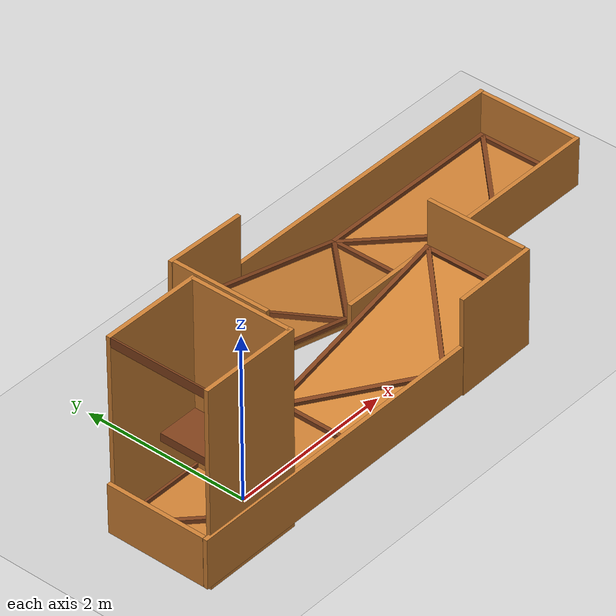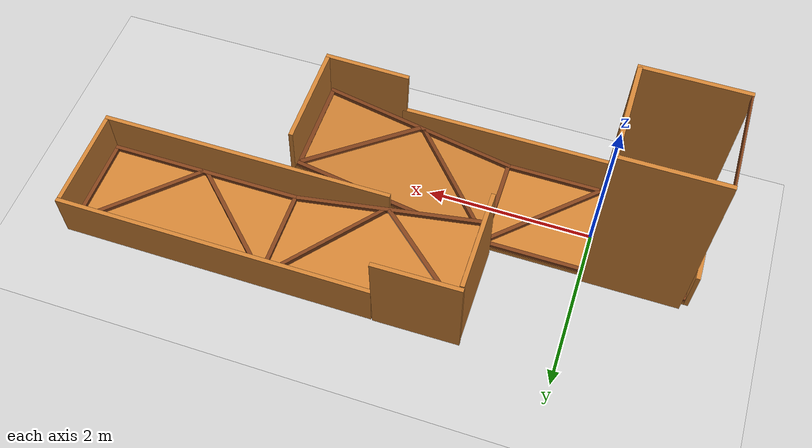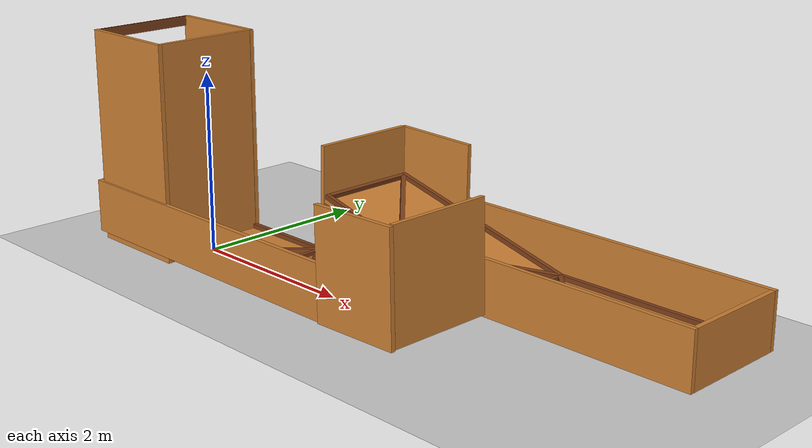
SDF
<?xml version='1.0'?>
<sdf version='1.9'>
  <world name='empty'>
    <physics name='1ms' type='ignored'>
      <max_step_size>0.001</max_step_size>
      <real_time_factor>1</real_time_factor>
      <real_time_update_rate>1000</real_time_update_rate>
    </physics>
    <plugin name='gz::sim::systems::Physics' filename='ignition-gazebo-physics-system' />
    <plugin name='gz::sim::systems::UserCommands' filename='ignition-gazebo-user-commands-system' />
    <plugin name='gz::sim::systems::SceneBroadcaster'
      filename='ignition-gazebo-scene-broadcaster-system' />
    <plugin name='gz::sim::systems::Contact' filename='ignition-gazebo-contact-system' />
    <gravity>0 0 -9.8</gravity>
    <magnetic_field>6e-06 2.3e-05 -4.2e-05</magnetic_field>
    <atmosphere type='adiabatic' />
    <scene>
      <ambient>0.4 0.4 0.4 1</ambient>
      <background>0.7 0.7 0.7 1</background>
      <shadows>true</shadows>
    </scene>
    <model name='ground_plane'>
      <static>true</static>
      <link name='link'>
        <collision name='collision'>
          <geometry>
            <plane>
              <normal>0 0 1</normal>
              <size>100 100</size>
            </plane>
          </geometry>
          <surface>
            <friction>
              <ode />
            </friction>
            <bounce />
            <contact />
          </surface>
        </collision>
        <visual name='visual'>
          <geometry>
            <plane>
              <normal>0 0 1</normal>
              <size>100 100</size>
            </plane>
          </geometry>
          <material>
            <ambient>0.8 0.8 0.8 1</ambient>
            <diffuse>0.8 0.8 0.8 1</diffuse>
            <specular>0.8 0.8 0.8 1</specular>
          </material>
        </visual>
        <pose>0 0 0 0 -0 0</pose>
        <inertial>
          <pose>0 0 0 0 -0 0</pose>
          <mass>1</mass>
          <inertia>
            <ixx>1</ixx>
            <ixy>0</ixy>
            <ixz>0</ixz>
            <iyy>1</iyy>
            <iyz>0</iyz>
            <izz>1</izz>
          </inertia>
        </inertial>
        <enable_wind>false</enable_wind>
      </link>
      <pose>0 0 0 0 -0 0</pose>
      <self_collide>false</self_collide>
    </model>

    <model name='K-Rails'>
      <pose>0 0 0 0 0 0</pose>

      <!-- Bases -->
      <link name='Bas1'>
        <inertial>
          <inertia>
            <ixx>0.16666</ixx>
            <ixy>0</ixy>
            <ixz>0</ixz>
            <iyy>0.16666</iyy>
            <iyz>0</iyz>
            <izz>0.16666</izz>
          </inertia>
          <mass>1</mass>
          <pose>0 0 0 0 -0 0</pose>
        </inertial>
        <collision name='Bas1_collision'>
          <geometry>
            <box>
              <size>2.4 1.2 0.05</size>
            </box>
          </geometry>
          <surface>
            <friction>
              <ode />
            </friction>
            <bounce />
            <contact />
          </surface>
        </collision>
        <visual name='Bas1_visual'>
          <geometry>
            <box>
              <size>2.4 1.2 0.05</size>
            </box>
          </geometry>
          <material>
            <ambient>0.8 0.5 0.2 1</ambient>
            <diffuse>0.8 0.5 0.2 1</diffuse>
            <specular>0.4 0.2 0.1 1</specular>
          </material>
        </visual>
        <pose>0 0 0.1 0 -0 0</pose>
        <enable_wind>false</enable_wind>
      </link>

      <link name='Bas2'>
        <inertial>
          <inertia>
            <ixx>0.16666</ixx>
            <ixy>0</ixy>
            <ixz>0</ixz>
            <iyy>0.16666</iyy>
            <iyz>0</iyz>
            <izz>0.16666</izz>
          </inertia>
          <mass>1</mass>
          <pose>0 0 0 0 -0 0</pose>
        </inertial>
        <collision name='Bas2_collision'>
          <geometry>
            <box>
              <size>2.4 1.2 0.05</size>
            </box>
          </geometry>
          <surface>
            <friction>
              <ode />
            </friction>
            <bounce />
            <contact />
          </surface>
        </collision>
        <visual name='Bas2_visual'>
          <geometry>
            <box>
              <size>2.4 1.2 0.05</size>
            </box>
          </geometry>
          <material>
            <ambient>0.8 0.5 0.2 1</ambient>
            <diffuse>0.8 0.5 0.2 1</diffuse>
            <specular>0.4 0.2 0.1 1</specular>
          </material>
        </visual>
        <pose relative_to='Bas1'>2.3 0 0.29 0 -0.25 0</pose>
        <enable_wind>false</enable_wind>
      </link>

      <link name='Bas3'>
        <inertial>
          <inertia>
            <ixx>0.16666</ixx>
            <ixy>0</ixy>
            <ixz>0</ixz>
            <iyy>0.16666</iyy>
            <iyz>0</iyz>
            <izz>0.16666</izz>
          </inertia>
          <mass>1</mass>
          <pose>0 0 0 0 -0 0</pose>
        </inertial>
        <collision name='Bas3_collision'>
          <geometry>
            <box>
              <size>2.4 1.2 0.05</size>
            </box>
          </geometry>
          <surface>
            <friction>
              <ode />
            </friction>
            <bounce />
            <contact />
          </surface>
        </collision>
        <visual name='Bas3_visual'>
          <geometry>
            <box>
              <size>2.4 1.2 0.05</size>
            </box>
          </geometry>
          <material>
            <ambient>0.8 0.5 0.2 1</ambient>
            <diffuse>0.8 0.5 0.2 1</diffuse>
            <specular>0.4 0.2 0.1 1</specular>
          </material>
        </visual>
        <pose relative_to='Bas2'>0 1.25 0 0 0.5 0</pose>
        <enable_wind>false</enable_wind>
      </link>

      <link name='Bas4'>
        <inertial>
          <inertia>
            <ixx>0.16666</ixx>
            <ixy>0</ixy>
            <ixz>0</ixz>
            <iyy>0.16666</iyy>
            <iyz>0</iyz>
            <izz>0.16666</izz>
          </inertia>
          <mass>1</mass>
          <pose>0 0 0 0 -0 0</pose>
        </inertial>
        <collision name='Bas4_collision'>
          <geometry>
            <box>
              <size>2.4 1.2 0.05</size>
            </box>
          </geometry>
          <surface>
            <friction>
              <ode />
            </friction>
            <bounce />
            <contact />
          </surface>
        </collision>
        <visual name='Bas4_visual'>
          <geometry>
            <box>
              <size>2.4 1.2 0.05</size>
            </box>
          </geometry>
          <material>
            <ambient>0.8 0.5 0.2 1</ambient>
            <diffuse>0.8 0.5 0.2 1</diffuse>
            <specular>0.4 0.2 0.1 1</specular>
          </material>
        </visual>
        <pose relative_to='Bas3'>2.35 0 0.295 0 -0.25 0</pose>
        <enable_wind>false</enable_wind>
      </link>

      <!-- Pontas -->
      <link name='Pon1'>
        <inertial>
          <inertia>
            <ixx>0.16666</ixx>
            <ixy>0</ixy>
            <ixz>0</ixz>
            <iyy>0.16666</iyy>
            <iyz>0</iyz>
            <izz>0.16666</izz>
          </inertia>
          <mass>1</mass>
          <pose>0 0 0 0 -0 0</pose>
        </inertial>
        <collision name='Pon1_collision'>
          <geometry>
            <box>
              <size>0.6 1.2 0.05</size>
            </box>
          </geometry>
          <surface>
            <friction>
              <ode />
            </friction>
            <bounce />
            <contact />
          </surface>
        </collision>
        <visual name='Pon1_visual'>
          <geometry>
            <box>
              <size>0.6 1.2 0.05</size>
            </box>
          </geometry>
          <material>
            <ambient>0.8 0.5 0.2 1</ambient>
            <diffuse>0.8 0.5 0.2 1</diffuse>
            <specular>0.4 0.2 0.1 1</specular>
          </material>
        </visual>
        <pose relative_to='Bas1'>-1.225 0 0.275 0 1.57 0</pose>
        <enable_wind>false</enable_wind>
      </link>

      <link name='Pon2'>
        <inertial>
          <inertia>
            <ixx>0.16666</ixx>
            <ixy>0</ixy>
            <ixz>0</ixz>
            <iyy>0.16666</iyy>
            <iyz>0</iyz>
            <izz>0.16666</izz>
          </inertia>
          <mass>1</mass>
          <pose>0 0 0 0 -0 0</pose>
        </inertial>
        <collision name='Pon2_collision'>
          <geometry>
            <box>
              <size>0.6 1.2 0.05</size>
            </box>
          </geometry>
          <surface>
            <friction>
              <ode />
            </friction>
            <bounce />
            <contact />
          </surface>
        </collision>
        <visual name='Pon2_visual'>
          <geometry>
            <box>
              <size>0.6 1.2 0.05</size>
            </box>
          </geometry>
          <material>
            <ambient>0.8 0.5 0.2 1</ambient>
            <diffuse>0.8 0.5 0.2 1</diffuse>
            <specular>0.4 0.2 0.1 1</specular>
          </material>
        </visual>
        <pose relative_to='Bas4'>1.225 0 0.275 0 1.57 0</pose>
        <enable_wind>false</enable_wind>
      </link>

      <link name='Pon3'>
        <inertial>
          <inertia>
            <ixx>0.16666</ixx>
            <ixy>0</ixy>
            <ixz>0</ixz>
            <iyy>0.16666</iyy>
            <iyz>0</iyz>
            <izz>0.16666</izz>
          </inertia>
          <mass>1</mass>
          <pose>0 0 0 0 -0 0</pose>
        </inertial>
        <collision name='Pon3_collision'>
          <geometry>
            <box>
              <size>1.2 1.2 0.05</size>
            </box>
          </geometry>
          <surface>
            <friction>
              <ode />
            </friction>
            <bounce />
            <contact />
          </surface>
        </collision>
        <visual name='Pon3_visual'>
          <geometry>
            <box>
              <size>1.2 1.2 0.05</size>
            </box>
          </geometry>
          <material>
            <ambient>0.8 0.5 0.2 1</ambient>
            <diffuse>0.8 0.5 0.2 1</diffuse>
            <specular>0.4 0.2 0.1 1</specular>
          </material>
        </visual>
        <pose relative_to='Bas2'>1.23 0 0 0 1.8 0</pose>
        <enable_wind>false</enable_wind>
      </link>

      <link name='Pon4'>
        <inertial>
          <inertia>
            <ixx>0.16666</ixx>
            <ixy>0</ixy>
            <ixz>0</ixz>
            <iyy>0.16666</iyy>
            <iyz>0</iyz>
            <izz>0.16666</izz>
          </inertia>
          <mass>1</mass>
          <pose>0 0 0 0 -0 0</pose>
        </inertial>
        <collision name='Pon4_collision'>
          <geometry>
            <box>
              <size>1.2 1.2 0.05</size>
            </box>
          </geometry>
          <surface>
            <friction>
              <ode />
            </friction>
            <bounce />
            <contact />
          </surface>
        </collision>
        <visual name='Pon4_visual'>
          <geometry>
            <box>
              <size>1.2 1.2 0.05</size>
            </box>
          </geometry>
          <material>
            <ambient>0.8 0.5 0.2 1</ambient>
            <diffuse>0.8 0.5 0.2 1</diffuse>
            <specular>0.4 0.2 0.1 1</specular>
          </material>
        </visual>
        <pose relative_to='Bas3'>-1.23 0 0 0 -1.8 0</pose>
        <enable_wind>false</enable_wind>
      </link>

      <link name='Pon5'>
        <inertial>
          <inertia>
            <ixx>0.16666</ixx>
            <ixy>0</ixy>
            <ixz>0</ixz>
            <iyy>0.16666</iyy>
            <iyz>0</iyz>
            <izz>0.16666</izz>
          </inertia>
          <mass>1</mass>
          <pose>0 0 0 0 -0 0</pose>
        </inertial>
        <collision name='Pon5_collision'>
          <geometry>
            <box>
              <size>1.2 1.02 0.05</size>
            </box>
          </geometry>
          <surface>
            <friction>
              <ode />
            </friction>
            <bounce />
            <contact />
          </surface>
        </collision>
        <visual name='Pon5_visual'>
          <geometry>
            <box>
              <size>1.2 1.02 0.05</size>
            </box>
          </geometry>
          <material>
            <ambient>0.8 0.5 0.2 1</ambient>
            <diffuse>0.8 0.5 0.2 1</diffuse>
            <specular>0.4 0.2 0.1 1</specular>
          </material>
        </visual>
        <pose relative_to='Bas3'>-0.76 0.63 0.1 1.57 -1.8 0</pose>
        <enable_wind>false</enable_wind>
      </link>

      <link name='Pon6'>
        <inertial>
          <inertia>
            <ixx>0.16666</ixx>
            <ixy>0</ixy>
            <ixz>0</ixz>
            <iyy>0.16666</iyy>
            <iyz>0</iyz>
            <izz>0.16666</izz>
          </inertia>
          <mass>1</mass>
          <pose>0 0 0 0 -0 0</pose>
        </inertial>
        <collision name='Pon6_collision'>
          <geometry>
            <box>
              <size>1.2 1.02 0.05</size>
            </box>
          </geometry>
          <surface>
            <friction>
              <ode />
            </friction>
            <bounce />
            <contact />
          </surface>
        </collision>
        <visual name='Pon6_visual'>
          <geometry>
            <box>
              <size>1.2 1.02 0.05</size>
            </box>
          </geometry>
          <material>
            <ambient>0.8 0.5 0.2 1</ambient>
            <diffuse>0.8 0.5 0.2 1</diffuse>
            <specular>0.4 0.2 0.1 1</specular>
          </material>
        </visual>
        <pose relative_to='Bas2'>0.76 -0.63 0.1 1.57 1.8 0</pose>
        <enable_wind>false</enable_wind>
      </link>

      <!-- Paredes -->
      <link name='Par1'>
        <inertial>
          <inertia>
            <ixx>0.16666</ixx>
            <ixy>0</ixy>
            <ixz>0</ixz>
            <iyy>0.16666</iyy>
            <iyz>0</iyz>
            <izz>0.16666</izz>
          </inertia>
          <mass>1</mass>
          <pose>0 0 0 0 -0 0</pose>
        </inertial>
        <collision name='Par1_collision'>
          <geometry>
            <box>
              <size>0.6 3.8 0.05</size>
            </box>
          </geometry>
          <surface>
            <friction>
              <ode />
            </friction>
            <bounce />
            <contact />
          </surface>
        </collision>
        <visual name='Par1_visual'>
          <geometry>
            <box>
              <size>0.6 3.8 0.05</size>
            </box>
          </geometry>
          <material>
            <ambient>0.8 0.5 0.2 1</ambient>
            <diffuse>0.8 0.5 0.2 1</diffuse>
            <specular>0.4 0.2 0.1 1</specular>
          </material>
        </visual>
        <pose relative_to='Bas1'>0.65 -0.626 0.275 1.57 1.57 0</pose>
        <enable_wind>false</enable_wind>
      </link>

      <link name='Par2'>
        <inertial>
          <inertia>
            <ixx>0.16666</ixx>
            <ixy>0</ixy>
            <ixz>0</ixz>
            <iyy>0.16666</iyy>
            <iyz>0</iyz>
            <izz>0.16666</izz>
          </inertia>
          <mass>1</mass>
          <pose>0 0 0 0 -0 0</pose>
        </inertial>
        <collision name='Par2_collision'>
          <geometry>
            <box>
              <size>0.6 3.8 0.05</size>
            </box>
          </geometry>
          <surface>
            <friction>
              <ode />
            </friction>
            <bounce />
            <contact />
          </surface>
        </collision>
        <visual name='Par2_visual'>
          <geometry>
            <box>
              <size>0.6 3.8 0.05</size>
            </box>
          </geometry>
          <material>
            <ambient>0.8 0.5 0.2 1</ambient>
            <diffuse>0.8 0.5 0.2 1</diffuse>
            <specular>0.4 0.2 0.1 1</specular>
          </material>
        </visual>
        <pose relative_to='Bas4'>-0.65 0.626 0.275 1.57 1.57 0</pose>
        <enable_wind>false</enable_wind>
      </link>

      <link name='Par3'>
        <inertial>
          <inertia>
            <ixx>0.16666</ixx>
            <ixy>0</ixy>
            <ixz>0</ixz>
            <iyy>0.16666</iyy>
            <iyz>0</iyz>
            <izz>0.16666</izz>
          </inertia>
          <mass>1</mass>
          <pose>0 0 0 0 -0 0</pose>
        </inertial>
        <collision name='Par3_collision'>
          <geometry>
            <box>
              <size>0.6 3.6 0.05</size>
            </box>
          </geometry>
          <surface>
            <friction>
              <ode />
            </friction>
            <bounce />
            <contact />
          </surface>
        </collision>
        <visual name='Par3_visual'>
          <geometry>
            <box>
              <size>0.6 3.6 0.05</size>
            </box>
          </geometry>
          <material>
            <ambient>0.8 0.5 0.2 1</ambient>
            <diffuse>0.8 0.5 0.2 1</diffuse>
            <specular>0.4 0.2 0.1 1</specular>
          </material>
        </visual>
        <pose relative_to='Bas4'>-0.55 -0.626 0.275 1.57 1.57 0</pose>
        <enable_wind>false</enable_wind>
      </link>

      <!-- Base 1 -->
      <link name='BarA1'>
        <inertial>
          <inertia>
            <ixx>0.16666</ixx>
            <ixy>0</ixy>
            <ixz>0</ixz>
            <iyy>0.16666</iyy>
            <iyz>0</iyz>
            <izz>0.16666</izz>
          </inertia>
          <mass>1</mass>
          <pose>0 0 0 0 -0 0</pose>
        </inertial>
        <collision name='BarA1_collision'>
          <geometry>
            <box>
              <size>2.4 0.05 0.05</size>
            </box>
          </geometry>
          <surface>
            <friction>
              <ode />
            </friction>
            <bounce />
            <contact />
          </surface>
        </collision>
        <visual name='BarA1_visual'>
          <geometry>
            <box>
              <size>2.4 0.05 0.05</size>
            </box>
          </geometry>
          <material>
            <ambient>0.5 0.25 0.1 1</ambient>
            <diffuse>0.5 0.25 0.1 1</diffuse>
            <specular>0.3 0.15 0.05 1</specular>
          </material>
        </visual>
        <pose relative_to='Bas1'>0 -0.57 0.05 0 0 0</pose>
        <enable_wind>false</enable_wind>
      </link>

      <link name='BarA2'>
        <inertial>
          <inertia>
            <ixx>0.16666</ixx>
            <ixy>0</ixy>
            <ixz>0</ixz>
            <iyy>0.16666</iyy>
            <iyz>0</iyz>
            <izz>0.16666</izz>
          </inertia>
          <mass>1</mass>
          <pose>0 0 0 0 -0 0</pose>
        </inertial>
        <collision name='BarA2_collision'>
          <geometry>
            <box>
              <size>2.4 0.05 0.05</size>
            </box>
          </geometry>
          <surface>
            <friction>
              <ode />
            </friction>
            <bounce />
            <contact />
          </surface>
        </collision>
        <visual name='BarA2_visual'>
          <geometry>
            <box>
              <size>2.4 0.05 0.05</size>
            </box>
          </geometry>
          <material>
            <ambient>0.5 0.25 0.1 1</ambient>
            <diffuse>0.5 0.25 0.1 1</diffuse>
            <specular>0.3 0.15 0.05 1</specular>
          </material>
        </visual>
        <pose relative_to='Bas1'>0 0.57 0.05 0 0 0</pose>
        <enable_wind>false</enable_wind>
      </link>

      <link name='BarA3'>
        <inertial>
          <inertia>
            <ixx>0.16666</ixx>
            <ixy>0</ixy>
            <ixz>0</ixz>
            <iyy>0.16666</iyy>
            <iyz>0</iyz>
            <izz>0.16666</izz>
          </inertia>
          <mass>1</mass>
          <pose>0 0 0 0 -0 0</pose>
        </inertial>
        <collision name='BarA3_collision'>
          <geometry>
            <box>
              <size>0.05 1.1 0.05</size>
            </box>
          </geometry>
          <surface>
            <friction>
              <ode />
            </friction>
            <bounce />
            <contact />
          </surface>
        </collision>
        <visual name='BarA3_visual'>
          <geometry>
            <box>
              <size>0.05 1.1 0.05</size>
            </box>
          </geometry>
          <material>
            <ambient>0.5 0.25 0.1 1</ambient>
            <diffuse>0.5 0.25 0.1 1</diffuse>
            <specular>0.3 0.15 0.05 1</specular>
          </material>
        </visual>
        <pose relative_to='Bas1'>-1.175 0 0.05 0 0 0</pose>
        <enable_wind>false</enable_wind>
      </link>

      <link name='BarA4'>
        <inertial>
          <inertia>
            <ixx>0.16666</ixx>
            <ixy>0</ixy>
            <ixz>0</ixz>
            <iyy>0.16666</iyy>
            <iyz>0</iyz>
            <izz>0.16666</izz>
          </inertia>
          <mass>1</mass>
          <pose>0 0 0 0 -0 0</pose>
        </inertial>
        <collision name='BarA4_collision'>
          <geometry>
            <box>
              <size>0.05 1.1 0.05</size>
            </box>
          </geometry>
          <surface>
            <friction>
              <ode />
            </friction>
            <bounce />
            <contact />
          </surface>
        </collision>
        <visual name='BarA4_visual'>
          <geometry>
            <box>
              <size>0.05 1.1 0.05</size>
            </box>
          </geometry>
          <material>
            <ambient>0.5 0.25 0.1 1</ambient>
            <diffuse>0.5 0.25 0.1 1</diffuse>
            <specular>0.3 0.15 0.05 1</specular>
          </material>
        </visual>
        <pose relative_to='Bas1'>1.175 0 0.05 0 0 0</pose>
        <enable_wind>false</enable_wind>
      </link>

      <link name='BarA5'>
        <inertial>
          <inertia>
            <ixx>0.16666</ixx>
            <ixy>0</ixy>
            <ixz>0</ixz>
            <iyy>0.16666</iyy>
            <iyz>0</iyz>
            <izz>0.16666</izz>
          </inertia>
          <mass>1</mass>
          <pose>0 0 0 0 -0 0</pose>
        </inertial>
        <collision name='BarA5_collision'>
          <geometry>
            <box>
              <size>0.05 1.6 0.05</size>
            </box>
          </geometry>
          <surface>
            <friction>
              <ode />
            </friction>
            <bounce />
            <contact />
          </surface>
        </collision>
        <visual name='BarA5_visual'>
          <geometry>
            <box>
              <size>0.05 1.6 0.05</size>
            </box>
          </geometry>
          <material>
            <ambient>0.5 0.25 0.1 1</ambient>
            <diffuse>0.5 0.25 0.1 1</diffuse>
            <specular>0.3 0.15 0.05 1</specular>
          </material>
        </visual>
        <pose relative_to='Bas1'>-0.6 -0.01 0.05 0 0 0.8</pose>
        <enable_wind>false</enable_wind>
      </link>

      <link name='BarA6'>
        <inertial>
          <inertia>
            <ixx>0.16666</ixx>
            <ixy>0</ixy>
            <ixz>0</ixz>
            <iyy>0.16666</iyy>
            <iyz>0</iyz>
            <izz>0.16666</izz>
          </inertia>
          <mass>1</mass>
          <pose>0 0 0 0 -0 0</pose>
        </inertial>
        <collision name='BarA6_collision'>
          <geometry>
            <box>
              <size>0.05 1.6 0.05</size>
            </box>
          </geometry>
          <surface>
            <friction>
              <ode />
            </friction>
            <bounce />
            <contact />
          </surface>
        </collision>
        <visual name='BarA6_visual'>
          <geometry>
            <box>
              <size>0.05 1.6 0.05</size>
            </box>
          </geometry>
          <material>
            <ambient>0.5 0.25 0.1 1</ambient>
            <diffuse>0.5 0.25 0.1 1</diffuse>
            <specular>0.3 0.15 0.05 1</specular>
          </material>
        </visual>
        <pose relative_to='Bas1'>0.6 -0.01 0.05 0 0 -0.8</pose>
        <enable_wind>false</enable_wind>
      </link>

      <!-- Base 2 -->
      <link name='BarA7'>
        <inertial>
          <inertia>
            <ixx>0.16666</ixx>
            <ixy>0</ixy>
            <ixz>0</ixz>
            <iyy>0.16666</iyy>
            <iyz>0</iyz>
            <izz>0.16666</izz>
          </inertia>
          <mass>1</mass>
          <pose>0 0 0 0 -0 0</pose>
        </inertial>
        <collision name='BarA7_collision'>
          <geometry>
            <box>
              <size>2.4 0.05 0.05</size>
            </box>
          </geometry>
          <surface>
            <friction>
              <ode />
            </friction>
            <bounce />
            <contact />
          </surface>
        </collision>
        <visual name='BarA7_visual'>
          <geometry>
            <box>
              <size>2.4 0.05 0.05</size>
            </box>
          </geometry>
          <material>
            <ambient>0.5 0.25 0.1 1</ambient>
            <diffuse>0.5 0.25 0.1 1</diffuse>
            <specular>0.3 0.15 0.05 1</specular>
          </material>
        </visual>
        <pose relative_to='Bas2'>0 -0.57 0.05 0 0 0</pose>
        <enable_wind>false</enable_wind>
      </link>

      <link name='BarA8'>
        <inertial>
          <inertia>
            <ixx>0.16666</ixx>
            <ixy>0</ixy>
            <ixz>0</ixz>
            <iyy>0.16666</iyy>
            <iyz>0</iyz>
            <izz>0.16666</izz>
          </inertia>
          <mass>1</mass>
          <pose>0 0 0 0 -0 0</pose>
        </inertial>
        <collision name='BarA8_collision'>
          <geometry>
            <box>
              <size>2.4 0.05 0.05</size>
            </box>
          </geometry>
          <surface>
            <friction>
              <ode />
            </friction>
            <bounce />
            <contact />
          </surface>
        </collision>
        <visual name='BarA8_visual'>
          <geometry>
            <box>
              <size>2.4 0.05 0.05</size>
            </box>
          </geometry>
          <material>
            <ambient>0.5 0.25 0.1 1</ambient>
            <diffuse>0.5 0.25 0.1 1</diffuse>
            <specular>0.3 0.15 0.05 1</specular>
          </material>
        </visual>
        <pose relative_to='Bas2'>0 0.57 0.05 0 0 0</pose>
        <enable_wind>false</enable_wind>
      </link>

      <link name='BarA9'>
        <inertial>
          <inertia>
            <ixx>0.16666</ixx>
            <ixy>0</ixy>
            <ixz>0</ixz>
            <iyy>0.16666</iyy>
            <iyz>0</iyz>
            <izz>0.16666</izz>
          </inertia>
          <mass>1</mass>
          <pose>0 0 0 0 -0 0</pose>
        </inertial>
        <collision name='BarA9_collision'>
          <geometry>
            <box>
              <size>0.05 1.1 0.05</size>
            </box>
          </geometry>
          <surface>
            <friction>
              <ode />
            </friction>
            <bounce />
            <contact />
          </surface>
        </collision>
        <visual name='BarA9_visual'>
          <geometry>
            <box>
              <size>0.05 1.1 0.05</size>
            </box>
          </geometry>
          <material>
            <ambient>0.5 0.25 0.1 1</ambient>
            <diffuse>0.5 0.25 0.1 1</diffuse>
            <specular>0.3 0.15 0.05 1</specular>
          </material>
        </visual>
        <pose relative_to='Bas2'>1.175 0 0.05 0 0 0</pose>
        <enable_wind>false</enable_wind>
      </link>

      <link name='BarA10'>
        <inertial>
          <inertia>
            <ixx>0.16666</ixx>
            <ixy>0</ixy>
            <ixz>0</ixz>
            <iyy>0.16666</iyy>
            <iyz>0</iyz>
            <izz>0.16666</izz>
          </inertia>
          <mass>1</mass>
          <pose>0 0 0 0 -0 0</pose>
        </inertial>
        <collision name='BarA10_collision'>
          <geometry>
            <box>
              <size>0.05 1.6 0.05</size>
            </box>
          </geometry>
          <surface>
            <friction>
              <ode />
            </friction>
            <bounce />
            <contact />
          </surface>
        </collision>
        <visual name='BarA10_visual'>
          <geometry>
            <box>
              <size>0.05 1.6 0.05</size>
            </box>
          </geometry>
          <material>
            <ambient>0.5 0.25 0.1 1</ambient>
            <diffuse>0.5 0.25 0.1 1</diffuse>
            <specular>0.3 0.15 0.05 1</specular>
          </material>
        </visual>
        <pose relative_to='Bas2'>-0.6 -0.01 0.05 0 0 0.8</pose>
        <enable_wind>false</enable_wind>
      </link>

      <link name='BarA11'>
        <inertial>
          <inertia>
            <ixx>0.16666</ixx>
            <ixy>0</ixy>
            <ixz>0</ixz>
            <iyy>0.16666</iyy>
            <iyz>0</iyz>
            <izz>0.16666</izz>
          </inertia>
          <mass>1</mass>
          <pose>0 0 0 0 -0 0</pose>
        </inertial>
        <collision name='BarA11_collision'>
          <geometry>
            <box>
              <size>0.05 1.6 0.05</size>
            </box>
          </geometry>
          <surface>
            <friction>
              <ode />
            </friction>
            <bounce />
            <contact />
          </surface>
        </collision>
        <visual name='BarA11_visual'>
          <geometry>
            <box>
              <size>0.05 1.6 0.05</size>
            </box>
          </geometry>
          <material>
            <ambient>0.5 0.25 0.1 1</ambient>
            <diffuse>0.5 0.25 0.1 1</diffuse>
            <specular>0.3 0.15 0.05 1</specular>
          </material>
        </visual>
        <pose relative_to='Bas2'>0.6 -0.01 0.05 0 0 -0.8</pose>
        <enable_wind>false</enable_wind>
      </link>

      <!-- Base 3 -->
      <link name='BarA12'>
        <inertial>
          <inertia>
            <ixx>0.16666</ixx>
            <ixy>0</ixy>
            <ixz>0</ixz>
            <iyy>0.16666</iyy>
            <iyz>0</iyz>
            <izz>0.16666</izz>
          </inertia>
          <mass>1</mass>
          <pose>0 0 0 0 -0 0</pose>
        </inertial>
        <collision name='BarA12_collision'>
          <geometry>
            <box>
              <size>2.4 0.05 0.05</size>
            </box>
          </geometry>
          <surface>
            <friction>
              <ode />
            </friction>
            <bounce />
            <contact />
          </surface>
        </collision>
        <visual name='BarA12_visual'>
          <geometry>
            <box>
              <size>2.4 0.05 0.05</size>
            </box>
          </geometry>
          <material>
            <ambient>0.5 0.25 0.1 1</ambient>
            <diffuse>0.5 0.25 0.1 1</diffuse>
            <specular>0.3 0.15 0.05 1</specular>
          </material>
        </visual>
        <pose relative_to='Bas3'>0 -0.57 0.05 0 0 0</pose>
        <enable_wind>false</enable_wind>
      </link>

      <link name='BarA13'>
        <inertial>
          <inertia>
            <ixx>0.16666</ixx>
            <ixy>0</ixy>
            <ixz>0</ixz>
            <iyy>0.16666</iyy>
            <iyz>0</iyz>
            <izz>0.16666</izz>
          </inertia>
          <mass>1</mass>
          <pose>0 0 0 0 -0 0</pose>
        </inertial>
        <collision name='BarA13_collision'>
          <geometry>
            <box>
              <size>2.4 0.05 0.05</size>
            </box>
          </geometry>
          <surface>
            <friction>
              <ode />
            </friction>
            <bounce />
            <contact />
          </surface>
        </collision>
        <visual name='BarA13_visual'>
          <geometry>
            <box>
              <size>2.4 0.05 0.05</size>
            </box>
          </geometry>
          <material>
            <ambient>0.5 0.25 0.1 1</ambient>
            <diffuse>0.5 0.25 0.1 1</diffuse>
            <specular>0.3 0.15 0.05 1</specular>
          </material>
        </visual>
        <pose relative_to='Bas3'>0 0.57 0.05 0 0 0</pose>
        <enable_wind>false</enable_wind>
      </link>

      <link name='BarA14'>
        <inertial>
          <inertia>
            <ixx>0.16666</ixx>
            <ixy>0</ixy>
            <ixz>0</ixz>
            <iyy>0.16666</iyy>
            <iyz>0</iyz>
            <izz>0.16666</izz>
          </inertia>
          <mass>1</mass>
          <pose>0 0 0 0 -0 0</pose>
        </inertial>
        <collision name='BarA14_collision'>
          <geometry>
            <box>
              <size>0.05 1.1 0.05</size>
            </box>
          </geometry>
          <surface>
            <friction>
              <ode />
            </friction>
            <bounce />
            <contact />
          </surface>
        </collision>
        <visual name='BarA14_visual'>
          <geometry>
            <box>
              <size>0.05 1.1 0.05</size>
            </box>
          </geometry>
          <material>
            <ambient>0.5 0.25 0.1 1</ambient>
            <diffuse>0.5 0.25 0.1 1</diffuse>
            <specular>0.3 0.15 0.05 1</specular>
          </material>
        </visual>
        <pose relative_to='Bas3'>-1.175 0 0.05 0 0 0</pose>
        <enable_wind>false</enable_wind>
      </link>

      <link name='BarA15'>
        <inertial>
          <inertia>
            <ixx>0.16666</ixx>
            <ixy>0</ixy>
            <ixz>0</ixz>
            <iyy>0.16666</iyy>
            <iyz>0</iyz>
            <izz>0.16666</izz>
          </inertia>
          <mass>1</mass>
          <pose>0 0 0 0 -0 0</pose>
        </inertial>
        <collision name='BarA15_collision'>
          <geometry>
            <box>
              <size>0.05 1.6 0.05</size>
            </box>
          </geometry>
          <surface>
            <friction>
              <ode />
            </friction>
            <bounce />
            <contact />
          </surface>
        </collision>
        <visual name='BarA15_visual'>
          <geometry>
            <box>
              <size>0.05 1.6 0.05</size>
            </box>
          </geometry>
          <material>
            <ambient>0.5 0.25 0.1 1</ambient>
            <diffuse>0.5 0.25 0.1 1</diffuse>
            <specular>0.3 0.15 0.05 1</specular>
          </material>
        </visual>
        <pose relative_to='Bas3'>-0.6 -0.01 0.05 0 0 0.8</pose>
        <enable_wind>false</enable_wind>
      </link>

      <link name='BarA16'>
        <inertial>
          <inertia>
            <ixx>0.16666</ixx>
            <ixy>0</ixy>
            <ixz>0</ixz>
            <iyy>0.16666</iyy>
            <iyz>0</iyz>
            <izz>0.16666</izz>
          </inertia>
          <mass>1</mass>
          <pose>0 0 0 0 -0 0</pose>
        </inertial>
        <collision name='BarA16_collision'>
          <geometry>
            <box>
              <size>0.05 1.6 0.05</size>
            </box>
          </geometry>
          <surface>
            <friction>
              <ode />
            </friction>
            <bounce />
            <contact />
          </surface>
        </collision>
        <visual name='BarA16_visual'>
          <geometry>
            <box>
              <size>0.05 1.6 0.05</size>
            </box>
          </geometry>
          <material>
            <ambient>0.5 0.25 0.1 1</ambient>
            <diffuse>0.5 0.25 0.1 1</diffuse>
            <specular>0.3 0.15 0.05 1</specular>
          </material>
        </visual>
        <pose relative_to='Bas3'>0.6 -0.01 0.05 0 0 -0.8</pose>
        <enable_wind>false</enable_wind>
      </link>

      <!-- Base 4 -->
      <link name='BarA17'>
        <inertial>
          <inertia>
            <ixx>0.16666</ixx>
            <ixy>0</ixy>
            <ixz>0</ixz>
            <iyy>0.16666</iyy>
            <iyz>0</iyz>
            <izz>0.16666</izz>
          </inertia>
          <mass>1</mass>
          <pose>0 0 0 0 -0 0</pose>
        </inertial>
        <collision name='BarA17_collision'>
          <geometry>
            <box>
              <size>2.4 0.05 0.05</size>
            </box>
          </geometry>
          <surface>
            <friction>
              <ode />
            </friction>
            <bounce />
            <contact />
          </surface>
        </collision>
        <visual name='BarA17_visual'>
          <geometry>
            <box>
              <size>2.4 0.05 0.05</size>
            </box>
          </geometry>
          <material>
            <ambient>0.5 0.25 0.1 1</ambient>
            <diffuse>0.5 0.25 0.1 1</diffuse>
            <specular>0.3 0.15 0.05 1</specular>
          </material>
        </visual>
        <pose relative_to='Bas4'>0 -0.57 0.05 0 0 0</pose>
        <enable_wind>false</enable_wind>
      </link>

      <link name='BarA18'>
        <inertial>
          <inertia>
            <ixx>0.16666</ixx>
            <ixy>0</ixy>
            <ixz>0</ixz>
            <iyy>0.16666</iyy>
            <iyz>0</iyz>
            <izz>0.16666</izz>
          </inertia>
          <mass>1</mass>
          <pose>0 0 0 0 -0 0</pose>
        </inertial>
        <collision name='BarA18_collision'>
          <geometry>
            <box>
              <size>2.4 0.05 0.05</size>
            </box>
          </geometry>
          <surface>
            <friction>
              <ode />
            </friction>
            <bounce />
            <contact />
          </surface>
        </collision>
        <visual name='BarA18_visual'>
          <geometry>
            <box>
              <size>2.4 0.05 0.05</size>
            </box>
          </geometry>
          <material>
            <ambient>0.5 0.25 0.1 1</ambient>
            <diffuse>0.5 0.25 0.1 1</diffuse>
            <specular>0.3 0.15 0.05 1</specular>
          </material>
        </visual>
        <pose relative_to='Bas4'>0 0.57 0.05 0 0 0</pose>
        <enable_wind>false</enable_wind>
      </link>

      <link name='BarA19'>
        <inertial>
          <inertia>
            <ixx>0.16666</ixx>
            <ixy>0</ixy>
            <ixz>0</ixz>
            <iyy>0.16666</iyy>
            <iyz>0</iyz>
            <izz>0.16666</izz>
          </inertia>
          <mass>1</mass>
          <pose>0 0 0 0 -0 0</pose>
        </inertial>
        <collision name='BarA19_collision'>
          <geometry>
            <box>
              <size>0.05 1.1 0.05</size>
            </box>
          </geometry>
          <surface>
            <friction>
              <ode />
            </friction>
            <bounce />
            <contact />
          </surface>
        </collision>
        <visual name='BarA19_visual'>
          <geometry>
            <box>
              <size>0.05 1.1 0.05</size>
            </box>
          </geometry>
          <material>
            <ambient>0.5 0.25 0.1 1</ambient>
            <diffuse>0.5 0.25 0.1 1</diffuse>
            <specular>0.3 0.15 0.05 1</specular>
          </material>
        </visual>
        <pose relative_to='Bas4'>1.175 0 0.05 0 0 0</pose>
        <enable_wind>false</enable_wind>
      </link>

      <link name='BarA20'>
        <inertial>
          <inertia>
            <ixx>0.16666</ixx>
            <ixy>0</ixy>
            <ixz>0</ixz>
            <iyy>0.16666</iyy>
            <iyz>0</iyz>
            <izz>0.16666</izz>
          </inertia>
          <mass>1</mass>
          <pose>0 0 0 0 -0 0</pose>
        </inertial>
        <collision name='BarA20_collision'>
          <geometry>
            <box>
              <size>0.05 1.1 0.05</size>
            </box>
          </geometry>
          <surface>
            <friction>
              <ode />
            </friction>
            <bounce />
            <contact />
          </surface>
        </collision>
        <visual name='BarA20_visual'>
          <geometry>
            <box>
              <size>0.05 1.1 0.05</size>
            </box>
          </geometry>
          <material>
            <ambient>0.5 0.25 0.1 1</ambient>
            <diffuse>0.5 0.25 0.1 1</diffuse>
            <specular>0.3 0.15 0.05 1</specular>
          </material>
        </visual>
        <pose relative_to='Bas4'>-1.175 0 0.05 0 0 0</pose>
        <enable_wind>false</enable_wind>
      </link>

      <link name='BarA21'>
        <inertial>
          <inertia>
            <ixx>0.16666</ixx>
            <ixy>0</ixy>
            <ixz>0</ixz>
            <iyy>0.16666</iyy>
            <iyz>0</iyz>
            <izz>0.16666</izz>
          </inertia>
          <mass>1</mass>
          <pose>0 0 0 0 -0 0</pose>
        </inertial>
        <collision name='BarA21_collision'>
          <geometry>
            <box>
              <size>0.05 1.6 0.05</size>
            </box>
          </geometry>
          <surface>
            <friction>
              <ode />
            </friction>
            <bounce />
            <contact />
          </surface>
        </collision>
        <visual name='BarA21_visual'>
          <geometry>
            <box>
              <size>0.05 1.6 0.05</size>
            </box>
          </geometry>
          <material>
            <ambient>0.5 0.25 0.1 1</ambient>
            <diffuse>0.5 0.25 0.1 1</diffuse>
            <specular>0.3 0.15 0.05 1</specular>
          </material>
        </visual>
        <pose relative_to='Bas4'>-0.6 -0.01 0.05 0 0 0.8</pose>
        <enable_wind>false</enable_wind>
      </link>

      <link name='BarA22'>
        <inertial>
          <inertia>
            <ixx>0.16666</ixx>
            <ixy>0</ixy>
            <ixz>0</ixz>
            <iyy>0.16666</iyy>
            <iyz>0</iyz>
            <izz>0.16666</izz>
          </inertia>
          <mass>1</mass>
          <pose>0 0 0 0 -0 0</pose>
        </inertial>
        <collision name='BarA22_collision'>
          <geometry>
            <box>
              <size>0.05 1.6 0.05</size>
            </box>
          </geometry>
          <surface>
            <friction>
              <ode />
            </friction>
            <bounce />
            <contact />
          </surface>
        </collision>
        <visual name='BarA22_visual'>
          <geometry>
            <box>
              <size>0.05 1.6 0.05</size>
            </box>
          </geometry>
          <material>
            <ambient>0.5 0.25 0.1 1</ambient>
            <diffuse>0.5 0.25 0.1 1</diffuse>
            <specular>0.3 0.15 0.05 1</specular>
          </material>
        </visual>
        <pose relative_to='Bas4'>0.6 -0.01 0.05 0 0 -0.8</pose>
        <enable_wind>false</enable_wind>
      </link>

      <static>true</static>
      <self_collide>false</self_collide>
    </model>

    <model name='Operator_booth' canonical_link='Par1'>
      <pose>0 0 1.2 1.5708 0 -1.57</pose>
      <static>true</static>
      <link name='Par1'>
        <inertial>
          <inertia>
            <ixx>0.16666</ixx>
            <ixy>0</ixy>
            <ixz>0</ixz>
            <iyy>0.16666</iyy>
            <iyz>0</iyz>
            <izz>0.16666</izz>
          </inertia>
          <mass>1</mass>
          <pose>0 0 0 0 -0 0</pose>
        </inertial>
        <collision name='Par1_collision'>
          <geometry>
            <box>
              <size>1.2 2.4 0.05</size>
            </box>
          </geometry>
          <surface>
            <friction>
              <ode />
            </friction>
            <bounce />
            <contact />
          </surface>
        </collision>
        <visual name='Par1_visual'>
          <geometry>
            <box>
              <size>1.2 2.4 0.05</size>
            </box>
          </geometry>
          <material>
            <ambient>0.8 0.5 0.2 1</ambient>
            <diffuse>0.8 0.5 0.2 1</diffuse>
            <specular>0.4 0.2 0.1 1</specular>
          </material>
        </visual>
        <pose>0 0 0 0 -0 0</pose>
        <enable_wind>false</enable_wind>
      </link>

      <link name='Par2'>
        <pose relative_to='Par1'>0.6 0 0.57 0 1.57 0</pose>
        <inertial>
          <inertia>
            <ixx>0.16666</ixx>
            <ixy>0</ixy>
            <ixz>0</ixz>
            <iyy>0.16666</iyy>
            <iyz>0</iyz>
            <izz>0.16666</izz>
          </inertia>
          <mass>1</mass>
          <pose>0 0 0 0 -0 0</pose>
        </inertial>
        <collision name='Par2_collision'>
          <geometry>
            <box>
              <size>1.2 2.4 0.05</size>
            </box>
          </geometry>
          <surface>
            <friction>
              <ode />
            </friction>
            <bounce />
            <contact />
          </surface>
        </collision>
        <visual name='Par2_visual'>
          <geometry>
            <box>
              <size>1.2 2.4 0.05</size>
            </box>
          </geometry>
          <material>
            <ambient>0.8 0.5 0.2 1</ambient>
            <diffuse>0.8 0.5 0.2 1</diffuse>
            <specular>0.4 0.2 0.1 1</specular>
          </material>
        </visual>
        <pose>0 0 0 0 -0 0</pose>
        <enable_wind>false</enable_wind>
      </link>

      <link name='Par3'>
        <pose relative_to="Par1">
          -0.6 0 0.57 0 1.57 0
        </pose>
        <inertial>
          <inertia>
            <ixx>0.16666</ixx>
            <ixy>0</ixy>
            <ixz>0</ixz>
            <iyy>0.16666</iyy>
            <iyz>0</iyz>
            <izz>0.16666</izz>
          </inertia>
          <mass>1</mass>
          <pose>0 0 0 0 -0 0</pose>
        </inertial>
        <collision name='Par3_collision'>
          <geometry>
            <box>
              <size>1.2 2.4 0.05</size>
            </box>
          </geometry>
          <surface>
            <friction>
              <ode />
            </friction>
            <bounce />
            <contact />
          </surface>
        </collision>
        <visual name='Par3_visual'>
          <geometry>
            <box>
              <size>1.2 2.4 0.05</size>
            </box>
          </geometry>
          <material>
            <ambient>0.8 0.5 0.2 1</ambient>
            <diffuse>0.8 0.5 0.2 1</diffuse>
            <specular>0.4 0.2 0.1 1</specular>
          </material>
        </visual>
        <pose>0 0 0 0 -0 0</pose>
        <enable_wind>false</enable_wind>
      </link>

      <link name='Blo1'>
        <pose relative_to='Par1'>0 1.144 1.156 0 0 1.57</pose>
        <inertial>
          <inertia>
            <ixx>0.16666</ixx>
            <ixy>0</ixy>
            <ixz>0</ixz>
            <iyy>0.16666</iyy>
            <iyz>0</iyz>
            <izz>0.16666</izz>
          </inertia>
          <mass>1</mass>
          <pose>0 0 0 0 -0 0</pose>
        </inertial>
        <collision name='Blo1_collision'>
          <geometry>
            <box>
              <size>0.111 1.2 0.02</size>
            </box>
          </geometry>
          <surface>
            <friction>
              <ode />
            </friction>
            <bounce />
            <contact />
          </surface>
        </collision>
        <visual name='Blo1_visual'>
          <geometry>
            <box>
              <size>0.111 1.2 0.02</size>
            </box>
          </geometry>
          <material>
            <ambient>0.5 0.25 0.1 1</ambient>
            <diffuse>0.5 0.25 0.1 1</diffuse>
            <specular>0.3 0.15 0.05 1</specular>
          </material>
        </visual>
        <pose>0 0 0 0 -0 0</pose>
        <enable_wind>false</enable_wind>
      </link>

      <link name='Blo2'>
        <pose relative_to='Par1'>0 -0.4 0.27 0 1.57 1.57</pose>
        <inertial>
          <inertia>
            <ixx>0.16666</ixx>
            <ixy>0</ixy>
            <ixz>0</ixz>
            <iyy>0.16666</iyy>
            <iyz>0</iyz>
            <izz>0.16666</izz>
          </inertia>
          <mass>1</mass>
          <pose>0 0 0 0 -0 0</pose>
        </inertial>
        <collision name='Blo2_collision'>
          <geometry>
            <box>
              <size>0.5 1.2 0.1</size>
            </box>
          </geometry>
          <surface>
            <friction>
              <ode />
            </friction>
            <bounce />
            <contact />
          </surface>
        </collision>
        <visual name='Blo2_visual'>
          <geometry>
            <box>
              <size>0.5 1.2 0.1</size>
            </box>
          </geometry>
          <material>
            <ambient>0.5 0.25 0.1 1</ambient>
            <diffuse>0.5 0.25 0.1 1</diffuse>
            <specular>0.3 0.15 0.05 1</specular>
          </material>
        </visual>
        <pose>0 0 0 0 -0 0</pose>
        <enable_wind>false</enable_wind>
      </link>

    </model>

    <light name='sun' type='directional'>
      <pose>0 0 10 0 -0 0</pose>
      <cast_shadows>true</cast_shadows>
      <intensity>1</intensity>
      <direction>-0.5 0.1 -0.9</direction>
      <diffuse>0.8 0.8 0.8 1</diffuse>
      <specular>0.2 0.2 0.2 1</specular>
      <attenuation>
        <range>1000</range>
        <linear>0.01</linear>
        <constant>0.90000000000000002</constant>
        <quadratic>0.001</quadratic>
      </attenuation>
      <spot>
        <inner_angle>0</inner_angle>
        <outer_angle>0</outer_angle>
        <falloff>0</falloff>
      </spot>
    </light>
  </world>
</sdf>
